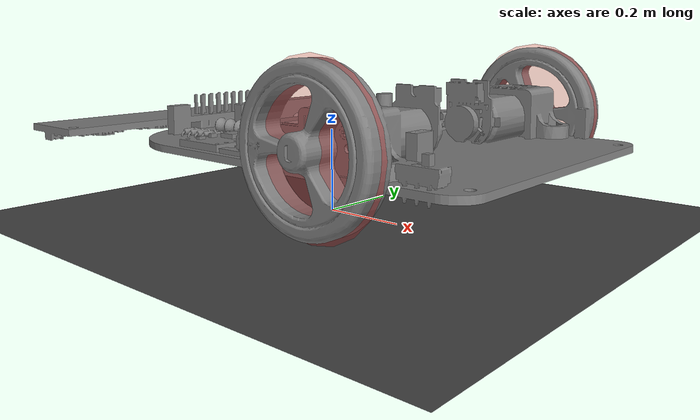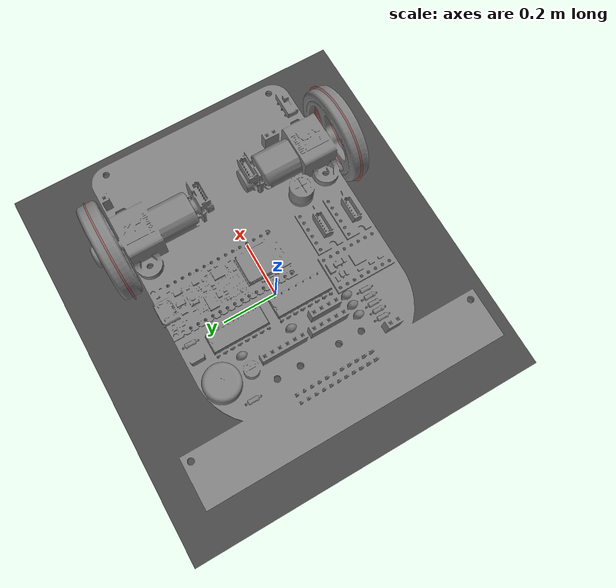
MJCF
<mujoco model="Hoopflyt">
  <option timestep="0.001" gravity="0 0 -9.81"/>

  <size njmax="50" nconmax="10" nstack="2000"/>

  <visual>
    <global offwidth="1280" offheight="720"/>
    <rgba haze=".3 .3 .3 1"/>
  </visual>

  <default>

  </default>

  <asset>
    <texture type="skybox" builtin="gradient" rgb1="0.6 0.6 0.6" rgb2="0 0 0" width="512" height="512"/>

    <texture name="texplane" type="2d" builtin="checker" rgb1=".25 .25 .25" rgb2=".3 .3 .3" width="512" height="512" mark="cross" markrgb=".8 .8 .8"/>

    <material name="matplane" reflectance="0.3" texture="texplane" texrepeat="1 1" texuniform="true"/>

    <mesh name="mouse" file="mouse.stl" scale="0.01 0.01 0.01"/>
  </asset>

  <worldbody>
    <geom name="floor" pos="0 0 0" size="0 0 0.25" type="plane" material="matplane"/>

    <light directional="true" diffuse=".8 .8 .8" specular=".2 .2 .2" pos="0 0 5" dir="0 0 -1"/>

    <body name="mouse" pos="0 0 0.2">
      <freejoint/>
      <geom name="mouse" type="mesh" mesh="mouse" mass="0.2"/>

      <body pos="-0.45 0 0.1" axisangle="0 1 0 90">
          <camera name="mouse" mode="fixed" fovy="100" axisangle="0 0 1 90"/>
      </body>

      <body pos="0.320 -0.4 0.035">
        <joint name="lwheel" axis="0 1 0" damping="0.1"/>
        <geom name="lwheel" type="ellipsoid" size="0.17 0.01 0.17" rgba="1 0 0 0.25" mass="0.01"/>
      </body>

      <body pos="0.320 0.41 0.035">
        <joint name="rwheel" axis="0 1 0" damping="0.1"/>
        <geom name="rwheel" type="ellipsoid" size="0.17 0.01 0.17"  rgba="1 0 0 0.25" mass="0.01"/>
      </body>

    </body>
  </worldbody>

  <actuator>
    <motor name="lwheel" joint="lwheel"/>
    <motor name="rwheel" joint="rwheel"/>
  </actuator>
</mujoco>
